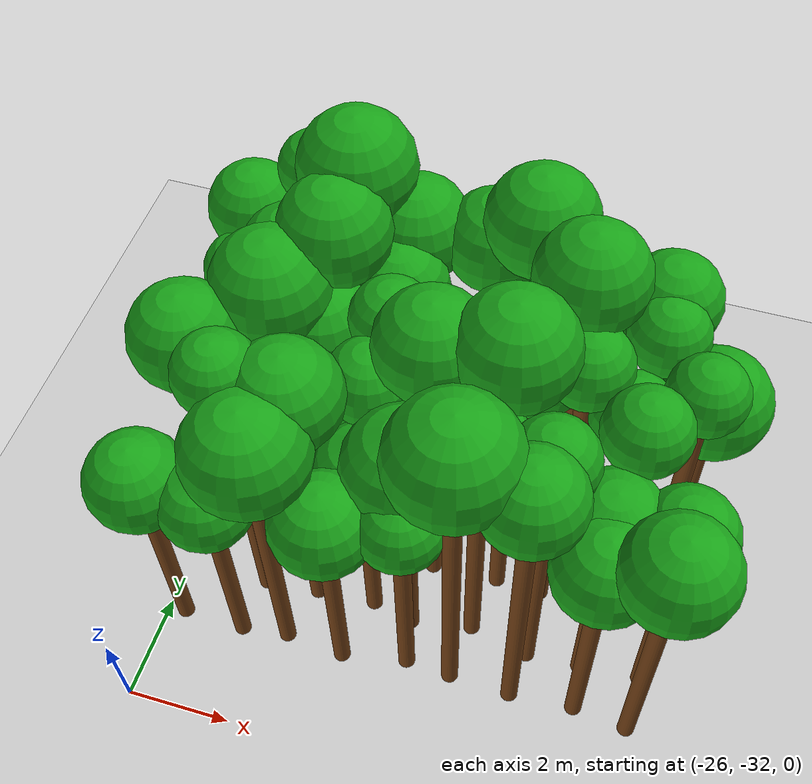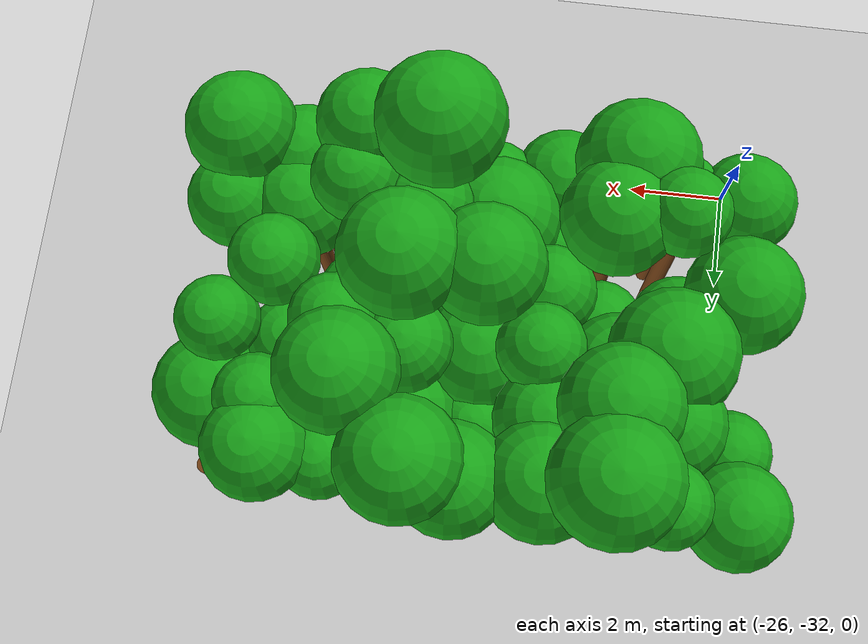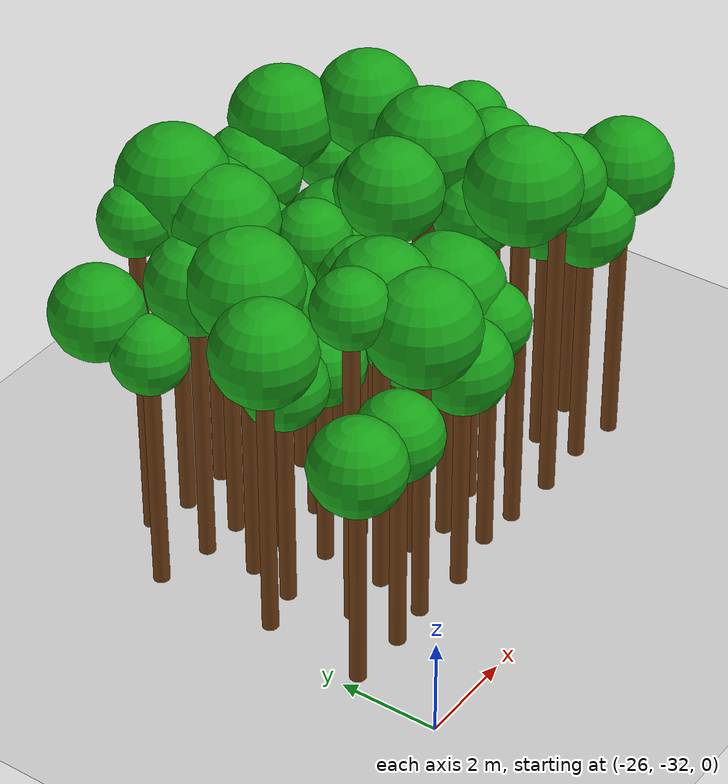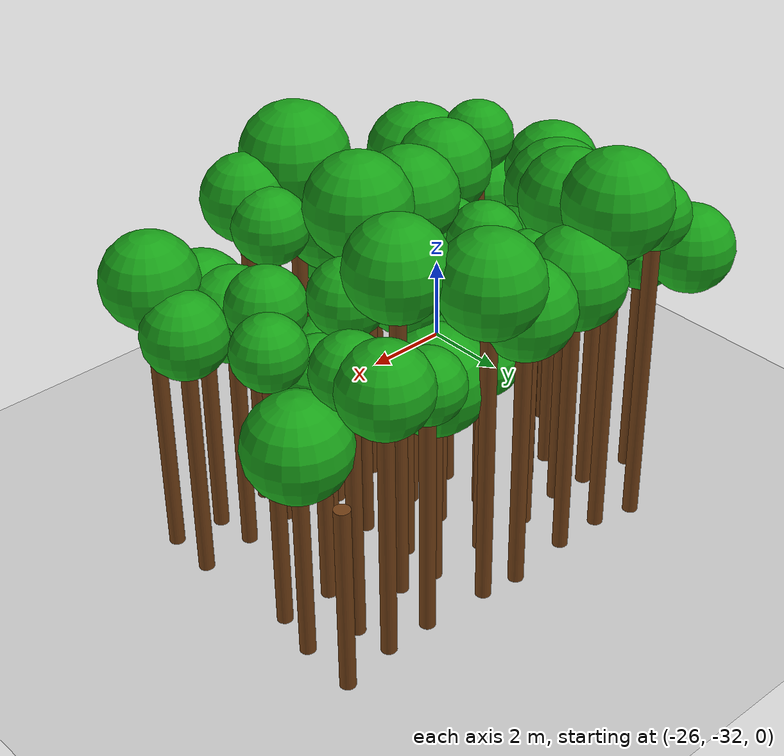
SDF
<sdf version="1.6">
 <world name="forest_world">
  <include><uri>model://sun</uri></include>
  <include><uri>model://ground_plane</uri></include>
  <model name="tree_220_trunk">
   <static>true</static>
   <pose>-25.66 -30.09 2.16 0 0 0</pose>
   <link name="link">
    <collision name="collision">
     <geometry><cylinder><radius>0.16</radius><length>4.32</length></cylinder></geometry>
    </collision>
    <visual name="visual">
     <geometry><cylinder><radius>0.16</radius><length>4.32</length></cylinder></geometry>
     <material><ambient>0.35 0.20 0.05 1</ambient><diffuse>0.45 0.25 0.08 1</diffuse></material>
    </visual>
   </link>
  </model>
  <model name="tree_220_leaf">
   <static>true</static>
   <pose>-25.66 -30.09 4.86 0 0 0</pose>
   <link name="link">
    <collision name="collision"><geometry><sphere><radius>0.91</radius></sphere></geometry></collision>
    <visual name="visual">
     <geometry><sphere><radius>0.91</radius></sphere></geometry>
     <material><ambient>0.05 0.45 0.05 1</ambient><diffuse>0.10 0.65 0.10 1</diffuse></material>
    </visual>
   </link>
  </model>
  <model name="tree_222_trunk">
   <static>true</static>
   <pose>-25.46 -27.97 2.83 0 0 0</pose>
   <link name="link">
    <collision name="collision">
     <geometry><cylinder><radius>0.16</radius><length>5.65</length></cylinder></geometry>
    </collision>
    <visual name="visual">
     <geometry><cylinder><radius>0.16</radius><length>5.65</length></cylinder></geometry>
     <material><ambient>0.35 0.20 0.05 1</ambient><diffuse>0.45 0.25 0.08 1</diffuse></material>
    </visual>
   </link>
  </model>
  <model name="tree_222_leaf">
   <static>true</static>
   <pose>-25.46 -27.97 6.25 0 0 0</pose>
   <link name="link">
    <collision name="collision"><geometry><sphere><radius>0.99</radius></sphere></geometry></collision>
    <visual name="visual">
     <geometry><sphere><radius>0.99</radius></sphere></geometry>
     <material><ambient>0.05 0.45 0.05 1</ambient><diffuse>0.10 0.65 0.10 1</diffuse></material>
    </visual>
   </link>
  </model>
  <model name="tree_224_trunk">
   <static>true</static>
   <pose>-25.56 -25.50 2.40 0 0 0</pose>
   <link name="link">
    <collision name="collision">
     <geometry><cylinder><radius>0.16</radius><length>4.79</length></cylinder></geometry>
    </collision>
    <visual name="visual">
     <geometry><cylinder><radius>0.16</radius><length>4.79</length></cylinder></geometry>
     <material><ambient>0.35 0.20 0.05 1</ambient><diffuse>0.45 0.25 0.08 1</diffuse></material>
    </visual>
   </link>
  </model>
  <model name="tree_224_leaf">
   <static>true</static>
   <pose>-25.56 -25.50 5.23 0 0 0</pose>
   <link name="link">
    <collision name="collision"><geometry><sphere><radius>0.74</radius></sphere></geometry></collision>
    <visual name="visual">
     <geometry><sphere><radius>0.74</radius></sphere></geometry>
     <material><ambient>0.05 0.45 0.05 1</ambient><diffuse>0.10 0.65 0.10 1</diffuse></material>
    </visual>
   </link>
  </model>
  <model name="tree_225_leaf">
   <static>true</static>
   <pose>-25.67 -24.42 5.77 0 0 0</pose>
   <link name="link">
    <collision name="collision"><geometry><sphere><radius>0.90</radius></sphere></geometry></collision>
    <visual name="visual">
     <geometry><sphere><radius>0.90</radius></sphere></geometry>
     <material><ambient>0.05 0.45 0.05 1</ambient><diffuse>0.10 0.65 0.10 1</diffuse></material>
    </visual>
   </link>
  </model>
  <model name="tree_275_trunk">
   <static>true</static>
   <pose>-24.44 -30.11 2.12 0 0 0</pose>
   <link name="link">
    <collision name="collision">
     <geometry><cylinder><radius>0.16</radius><length>4.25</length></cylinder></geometry>
    </collision>
    <visual name="visual">
     <geometry><cylinder><radius>0.16</radius><length>4.25</length></cylinder></geometry>
     <material><ambient>0.35 0.20 0.05 1</ambient><diffuse>0.45 0.25 0.08 1</diffuse></material>
    </visual>
   </link>
  </model>
  <model name="tree_275_leaf">
   <static>true</static>
   <pose>-24.44 -30.11 4.75 0 0 0</pose>
   <link name="link">
    <collision name="collision"><geometry><sphere><radius>0.84</radius></sphere></geometry></collision>
    <visual name="visual">
     <geometry><sphere><radius>0.84</radius></sphere></geometry>
     <material><ambient>0.05 0.45 0.05 1</ambient><diffuse>0.10 0.65 0.10 1</diffuse></material>
    </visual>
   </link>
  </model>
  <model name="tree_276_trunk">
   <static>true</static>
   <pose>-24.34 -29.03 3.27 0 0 0</pose>
   <link name="link">
    <collision name="collision">
     <geometry><cylinder><radius>0.16</radius><length>6.54</length></cylinder></geometry>
    </collision>
    <visual name="visual">
     <geometry><cylinder><radius>0.16</radius><length>6.54</length></cylinder></geometry>
     <material><ambient>0.35 0.20 0.05 1</ambient><diffuse>0.45 0.25 0.08 1</diffuse></material>
    </visual>
   </link>
  </model>
  <model name="tree_276_leaf">
   <static>true</static>
   <pose>-24.34 -29.03 6.98 0 0 0</pose>
   <link name="link">
    <collision name="collision"><geometry><sphere><radius>0.74</radius></sphere></geometry></collision>
    <visual name="visual">
     <geometry><sphere><radius>0.74</radius></sphere></geometry>
     <material><ambient>0.05 0.45 0.05 1</ambient><diffuse>0.10 0.65 0.10 1</diffuse></material>
    </visual>
   </link>
  </model>
  <model name="tree_277_trunk">
   <static>true</static>
   <pose>-24.58 -27.73 2.20 0 0 0</pose>
   <link name="link">
    <collision name="collision">
     <geometry><cylinder><radius>0.16</radius><length>4.41</length></cylinder></geometry>
    </collision>
    <visual name="visual">
     <geometry><cylinder><radius>0.16</radius><length>4.41</length></cylinder></geometry>
     <material><ambient>0.35 0.20 0.05 1</ambient><diffuse>0.45 0.25 0.08 1</diffuse></material>
    </visual>
   </link>
  </model>
  <model name="tree_277_leaf">
   <static>true</static>
   <pose>-24.58 -27.73 4.91 0 0 0</pose>
   <link name="link">
    <collision name="collision"><geometry><sphere><radius>0.83</radius></sphere></geometry></collision>
    <visual name="visual">
     <geometry><sphere><radius>0.83</radius></sphere></geometry>
     <material><ambient>0.05 0.45 0.05 1</ambient><diffuse>0.10 0.65 0.10 1</diffuse></material>
    </visual>
   </link>
  </model>
  <model name="tree_278_trunk">
   <static>true</static>
   <pose>-24.36 -26.78 2.96 0 0 0</pose>
   <link name="link">
    <collision name="collision">
     <geometry><cylinder><radius>0.16</radius><length>5.92</length></cylinder></geometry>
    </collision>
    <visual name="visual">
     <geometry><cylinder><radius>0.16</radius><length>5.92</length></cylinder></geometry>
     <material><ambient>0.35 0.20 0.05 1</ambient><diffuse>0.45 0.25 0.08 1</diffuse></material>
    </visual>
   </link>
  </model>
  <model name="tree_278_leaf">
   <static>true</static>
   <pose>-24.36 -26.78 6.56 0 0 0</pose>
   <link name="link">
    <collision name="collision"><geometry><sphere><radius>1.08</radius></sphere></geometry></collision>
    <visual name="visual">
     <geometry><sphere><radius>1.08</radius></sphere></geometry>
     <material><ambient>0.05 0.45 0.05 1</ambient><diffuse>0.10 0.65 0.10 1</diffuse></material>
    </visual>
   </link>
  </model>
  <model name="tree_279_trunk">
   <static>true</static>
   <pose>-24.41 -25.70 2.80 0 0 0</pose>
   <link name="link">
    <collision name="collision">
     <geometry><cylinder><radius>0.16</radius><length>5.61</length></cylinder></geometry>
    </collision>
    <visual name="visual">
     <geometry><cylinder><radius>0.16</radius><length>5.61</length></cylinder></geometry>
     <material><ambient>0.35 0.20 0.05 1</ambient><diffuse>0.45 0.25 0.08 1</diffuse></material>
    </visual>
   </link>
  </model>
  <model name="tree_279_leaf">
   <static>true</static>
   <pose>-24.41 -25.70 6.19 0 0 0</pose>
   <link name="link">
    <collision name="collision"><geometry><sphere><radius>0.96</radius></sphere></geometry></collision>
    <visual name="visual">
     <geometry><sphere><radius>0.96</radius></sphere></geometry>
     <material><ambient>0.05 0.45 0.05 1</ambient><diffuse>0.10 0.65 0.10 1</diffuse></material>
    </visual>
   </link>
  </model>
  <model name="tree_280_trunk">
   <static>true</static>
   <pose>-24.39 -24.34 3.30 0 0 0</pose>
   <link name="link">
    <collision name="collision">
     <geometry><cylinder><radius>0.16</radius><length>6.61</length></cylinder></geometry>
    </collision>
    <visual name="visual">
     <geometry><cylinder><radius>0.16</radius><length>6.61</length></cylinder></geometry>
     <material><ambient>0.35 0.20 0.05 1</ambient><diffuse>0.45 0.25 0.08 1</diffuse></material>
    </visual>
   </link>
  </model>
  <model name="tree_280_leaf">
   <static>true</static>
   <pose>-24.39 -24.34 7.03 0 0 0</pose>
   <link name="link">
    <collision name="collision"><geometry><sphere><radius>0.70</radius></sphere></geometry></collision>
    <visual name="visual">
     <geometry><sphere><radius>0.70</radius></sphere></geometry>
     <material><ambient>0.05 0.45 0.05 1</ambient><diffuse>0.10 0.65 0.10 1</diffuse></material>
    </visual>
   </link>
  </model>
  <model name="tree_330_trunk">
   <static>true</static>
   <pose>-23.54 -29.99 2.92 0 0 0</pose>
   <link name="link">
    <collision name="collision">
     <geometry><cylinder><radius>0.16</radius><length>5.85</length></cylinder></geometry>
    </collision>
    <visual name="visual">
     <geometry><cylinder><radius>0.16</radius><length>5.85</length></cylinder></geometry>
     <material><ambient>0.35 0.20 0.05 1</ambient><diffuse>0.45 0.25 0.08 1</diffuse></material>
    </visual>
   </link>
  </model>
  <model name="tree_330_leaf">
   <static>true</static>
   <pose>-23.54 -29.99 6.49 0 0 0</pose>
   <link name="link">
    <collision name="collision"><geometry><sphere><radius>1.07</radius></sphere></geometry></collision>
    <visual name="visual">
     <geometry><sphere><radius>1.07</radius></sphere></geometry>
     <material><ambient>0.05 0.45 0.05 1</ambient><diffuse>0.10 0.65 0.10 1</diffuse></material>
    </visual>
   </link>
  </model>
  <model name="tree_331_trunk">
   <static>true</static>
   <pose>-23.28 -28.93 3.05 0 0 0</pose>
   <link name="link">
    <collision name="collision">
     <geometry><cylinder><radius>0.16</radius><length>6.10</length></cylinder></geometry>
    </collision>
    <visual name="visual">
     <geometry><cylinder><radius>0.16</radius><length>6.10</length></cylinder></geometry>
     <material><ambient>0.35 0.20 0.05 1</ambient><diffuse>0.45 0.25 0.08 1</diffuse></material>
    </visual>
   </link>
  </model>
  <model name="tree_331_leaf">
   <static>true</static>
   <pose>-23.28 -28.93 6.69 0 0 0</pose>
   <link name="link">
    <collision name="collision"><geometry><sphere><radius>0.98</radius></sphere></geometry></collision>
    <visual name="visual">
     <geometry><sphere><radius>0.98</radius></sphere></geometry>
     <material><ambient>0.05 0.45 0.05 1</ambient><diffuse>0.10 0.65 0.10 1</diffuse></material>
    </visual>
   </link>
  </model>
  <model name="tree_332_trunk">
   <static>true</static>
   <pose>-23.25 -27.63 2.03 0 0 0</pose>
   <link name="link">
    <collision name="collision">
     <geometry><cylinder><radius>0.16</radius><length>4.05</length></cylinder></geometry>
    </collision>
    <visual name="visual">
     <geometry><cylinder><radius>0.16</radius><length>4.05</length></cylinder></geometry>
     <material><ambient>0.35 0.20 0.05 1</ambient><diffuse>0.45 0.25 0.08 1</diffuse></material>
    </visual>
   </link>
  </model>
  <model name="tree_332_leaf">
   <static>true</static>
   <pose>-23.25 -27.63 4.54 0 0 0</pose>
   <link name="link">
    <collision name="collision"><geometry><sphere><radius>0.81</radius></sphere></geometry></collision>
    <visual name="visual">
     <geometry><sphere><radius>0.81</radius></sphere></geometry>
     <material><ambient>0.05 0.45 0.05 1</ambient><diffuse>0.10 0.65 0.10 1</diffuse></material>
    </visual>
   </link>
  </model>
  <model name="tree_333_trunk">
   <static>true</static>
   <pose>-23.57 -26.60 2.55 0 0 0</pose>
   <link name="link">
    <collision name="collision">
     <geometry><cylinder><radius>0.16</radius><length>5.10</length></cylinder></geometry>
    </collision>
    <visual name="visual">
     <geometry><cylinder><radius>0.16</radius><length>5.10</length></cylinder></geometry>
     <material><ambient>0.35 0.20 0.05 1</ambient><diffuse>0.45 0.25 0.08 1</diffuse></material>
    </visual>
   </link>
  </model>
  <model name="tree_333_leaf">
   <static>true</static>
   <pose>-23.57 -26.60 5.69 0 0 0</pose>
   <link name="link">
    <collision name="collision"><geometry><sphere><radius>0.98</radius></sphere></geometry></collision>
    <visual name="visual">
     <geometry><sphere><radius>0.98</radius></sphere></geometry>
     <material><ambient>0.05 0.45 0.05 1</ambient><diffuse>0.10 0.65 0.10 1</diffuse></material>
    </visual>
   </link>
  </model>
  <model name="tree_334_trunk">
   <static>true</static>
   <pose>-23.56 -25.74 3.25 0 0 0</pose>
   <link name="link">
    <collision name="collision">
     <geometry><cylinder><radius>0.16</radius><length>6.49</length></cylinder></geometry>
    </collision>
    <visual name="visual">
     <geometry><cylinder><radius>0.16</radius><length>6.49</length></cylinder></geometry>
     <material><ambient>0.35 0.20 0.05 1</ambient><diffuse>0.45 0.25 0.08 1</diffuse></material>
    </visual>
   </link>
  </model>
  <model name="tree_334_leaf">
   <static>true</static>
   <pose>-23.56 -25.74 7.10 0 0 0</pose>
   <link name="link">
    <collision name="collision"><geometry><sphere><radius>1.01</radius></sphere></geometry></collision>
    <visual name="visual">
     <geometry><sphere><radius>1.01</radius></sphere></geometry>
     <material><ambient>0.05 0.45 0.05 1</ambient><diffuse>0.10 0.65 0.10 1</diffuse></material>
    </visual>
   </link>
  </model>
  <model name="tree_335_trunk">
   <static>true</static>
   <pose>-23.54 -24.56 3.42 0 0 0</pose>
   <link name="link">
    <collision name="collision">
     <geometry><cylinder><radius>0.16</radius><length>6.84</length></cylinder></geometry>
    </collision>
    <visual name="visual">
     <geometry><cylinder><radius>0.16</radius><length>6.84</length></cylinder></geometry>
     <material><ambient>0.35 0.20 0.05 1</ambient><diffuse>0.45 0.25 0.08 1</diffuse></material>
    </visual>
   </link>
  </model>
  <model name="tree_335_leaf">
   <static>true</static>
   <pose>-23.54 -24.56 7.48 0 0 0</pose>
   <link name="link">
    <collision name="collision"><geometry><sphere><radius>1.07</radius></sphere></geometry></collision>
    <visual name="visual">
     <geometry><sphere><radius>1.07</radius></sphere></geometry>
     <material><ambient>0.05 0.45 0.05 1</ambient><diffuse>0.10 0.65 0.10 1</diffuse></material>
    </visual>
   </link>
  </model>
  <model name="tree_385_trunk">
   <static>true</static>
   <pose>-22.38 -30.08 2.24 0 0 0</pose>
   <link name="link">
    <collision name="collision">
     <geometry><cylinder><radius>0.16</radius><length>4.47</length></cylinder></geometry>
    </collision>
    <visual name="visual">
     <geometry><cylinder><radius>0.16</radius><length>4.47</length></cylinder></geometry>
     <material><ambient>0.35 0.20 0.05 1</ambient><diffuse>0.45 0.25 0.08 1</diffuse></material>
    </visual>
   </link>
  </model>
  <model name="tree_385_leaf">
   <static>true</static>
   <pose>-22.38 -30.08 5.03 0 0 0</pose>
   <link name="link">
    <collision name="collision"><geometry><sphere><radius>0.92</radius></sphere></geometry></collision>
    <visual name="visual">
     <geometry><sphere><radius>0.92</radius></sphere></geometry>
     <material><ambient>0.05 0.45 0.05 1</ambient><diffuse>0.10 0.65 0.10 1</diffuse></material>
    </visual>
   </link>
  </model>
  <model name="tree_386_trunk">
   <static>true</static>
   <pose>-22.13 -28.84 2.15 0 0 0</pose>
   <link name="link">
    <collision name="collision">
     <geometry><cylinder><radius>0.16</radius><length>4.31</length></cylinder></geometry>
    </collision>
    <visual name="visual">
     <geometry><cylinder><radius>0.16</radius><length>4.31</length></cylinder></geometry>
     <material><ambient>0.35 0.20 0.05 1</ambient><diffuse>0.45 0.25 0.08 1</diffuse></material>
    </visual>
   </link>
  </model>
  <model name="tree_386_leaf">
   <static>true</static>
   <pose>-22.13 -28.84 4.84 0 0 0</pose>
   <link name="link">
    <collision name="collision"><geometry><sphere><radius>0.89</radius></sphere></geometry></collision>
    <visual name="visual">
     <geometry><sphere><radius>0.89</radius></sphere></geometry>
     <material><ambient>0.05 0.45 0.05 1</ambient><diffuse>0.10 0.65 0.10 1</diffuse></material>
    </visual>
   </link>
  </model>
  <model name="tree_387_trunk">
   <static>true</static>
   <pose>-22.32 -27.77 2.74 0 0 0</pose>
   <link name="link">
    <collision name="collision">
     <geometry><cylinder><radius>0.16</radius><length>5.47</length></cylinder></geometry>
    </collision>
    <visual name="visual">
     <geometry><cylinder><radius>0.16</radius><length>5.47</length></cylinder></geometry>
     <material><ambient>0.35 0.20 0.05 1</ambient><diffuse>0.45 0.25 0.08 1</diffuse></material>
    </visual>
   </link>
  </model>
  <model name="tree_387_leaf">
   <static>true</static>
   <pose>-22.32 -27.77 5.94 0 0 0</pose>
   <link name="link">
    <collision name="collision"><geometry><sphere><radius>0.78</radius></sphere></geometry></collision>
    <visual name="visual">
     <geometry><sphere><radius>0.78</radius></sphere></geometry>
     <material><ambient>0.05 0.45 0.05 1</ambient><diffuse>0.10 0.65 0.10 1</diffuse></material>
    </visual>
   </link>
  </model>
  <model name="tree_388_trunk">
   <static>true</static>
   <pose>-22.26 -26.69 2.95 0 0 0</pose>
   <link name="link">
    <collision name="collision">
     <geometry><cylinder><radius>0.16</radius><length>5.89</length></cylinder></geometry>
    </collision>
    <visual name="visual">
     <geometry><cylinder><radius>0.16</radius><length>5.89</length></cylinder></geometry>
     <material><ambient>0.35 0.20 0.05 1</ambient><diffuse>0.45 0.25 0.08 1</diffuse></material>
    </visual>
   </link>
  </model>
  <model name="tree_388_leaf">
   <static>true</static>
   <pose>-22.26 -26.69 6.34 0 0 0</pose>
   <link name="link">
    <collision name="collision"><geometry><sphere><radius>0.75</radius></sphere></geometry></collision>
    <visual name="visual">
     <geometry><sphere><radius>0.75</radius></sphere></geometry>
     <material><ambient>0.05 0.45 0.05 1</ambient><diffuse>0.10 0.65 0.10 1</diffuse></material>
    </visual>
   </link>
  </model>
  <model name="tree_389_trunk">
   <static>true</static>
   <pose>-22.48 -25.61 2.69 0 0 0</pose>
   <link name="link">
    <collision name="collision">
     <geometry><cylinder><radius>0.16</radius><length>5.37</length></cylinder></geometry>
    </collision>
    <visual name="visual">
     <geometry><cylinder><radius>0.16</radius><length>5.37</length></cylinder></geometry>
     <material><ambient>0.35 0.20 0.05 1</ambient><diffuse>0.45 0.25 0.08 1</diffuse></material>
    </visual>
   </link>
  </model>
  <model name="tree_389_leaf">
   <static>true</static>
   <pose>-22.48 -25.61 5.91 0 0 0</pose>
   <link name="link">
    <collision name="collision"><geometry><sphere><radius>0.90</radius></sphere></geometry></collision>
    <visual name="visual">
     <geometry><sphere><radius>0.90</radius></sphere></geometry>
     <material><ambient>0.05 0.45 0.05 1</ambient><diffuse>0.10 0.65 0.10 1</diffuse></material>
    </visual>
   </link>
  </model>
  <model name="tree_390_trunk">
   <static>true</static>
   <pose>-22.48 -24.56 2.86 0 0 0</pose>
   <link name="link">
    <collision name="collision">
     <geometry><cylinder><radius>0.16</radius><length>5.72</length></cylinder></geometry>
    </collision>
    <visual name="visual">
     <geometry><cylinder><radius>0.16</radius><length>5.72</length></cylinder></geometry>
     <material><ambient>0.35 0.20 0.05 1</ambient><diffuse>0.45 0.25 0.08 1</diffuse></material>
    </visual>
   </link>
  </model>
  <model name="tree_390_leaf">
   <static>true</static>
   <pose>-22.48 -24.56 6.32 0 0 0</pose>
   <link name="link">
    <collision name="collision"><geometry><sphere><radius>1.00</radius></sphere></geometry></collision>
    <visual name="visual">
     <geometry><sphere><radius>1.00</radius></sphere></geometry>
     <material><ambient>0.05 0.45 0.05 1</ambient><diffuse>0.10 0.65 0.10 1</diffuse></material>
    </visual>
   </link>
  </model>
  <model name="tree_440_trunk">
   <static>true</static>
   <pose>-21.14 -29.84 2.35 0 0 0</pose>
   <link name="link">
    <collision name="collision">
     <geometry><cylinder><radius>0.16</radius><length>4.70</length></cylinder></geometry>
    </collision>
    <visual name="visual">
     <geometry><cylinder><radius>0.16</radius><length>4.70</length></cylinder></geometry>
     <material><ambient>0.35 0.20 0.05 1</ambient><diffuse>0.45 0.25 0.08 1</diffuse></material>
    </visual>
   </link>
  </model>
  <model name="tree_440_leaf">
   <static>true</static>
   <pose>-21.14 -29.84 5.16 0 0 0</pose>
   <link name="link">
    <collision name="collision"><geometry><sphere><radius>0.77</radius></sphere></geometry></collision>
    <visual name="visual">
     <geometry><sphere><radius>0.77</radius></sphere></geometry>
     <material><ambient>0.05 0.45 0.05 1</ambient><diffuse>0.10 0.65 0.10 1</diffuse></material>
    </visual>
   </link>
  </model>
  <model name="tree_441_trunk">
   <static>true</static>
   <pose>-21.31 -29.03 2.49 0 0 0</pose>
   <link name="link">
    <collision name="collision">
     <geometry><cylinder><radius>0.16</radius><length>4.98</length></cylinder></geometry>
    </collision>
    <visual name="visual">
     <geometry><cylinder><radius>0.16</radius><length>4.98</length></cylinder></geometry>
     <material><ambient>0.35 0.20 0.05 1</ambient><diffuse>0.45 0.25 0.08 1</diffuse></material>
    </visual>
   </link>
  </model>
  <model name="tree_441_leaf">
   <static>true</static>
   <pose>-21.31 -29.03 5.63 0 0 0</pose>
   <link name="link">
    <collision name="collision"><geometry><sphere><radius>1.08</radius></sphere></geometry></collision>
    <visual name="visual">
     <geometry><sphere><radius>1.08</radius></sphere></geometry>
     <material><ambient>0.05 0.45 0.05 1</ambient><diffuse>0.10 0.65 0.10 1</diffuse></material>
    </visual>
   </link>
  </model>
  <model name="tree_442_trunk">
   <static>true</static>
   <pose>-21.24 -27.72 3.33 0 0 0</pose>
   <link name="link">
    <collision name="collision">
     <geometry><cylinder><radius>0.16</radius><length>6.66</length></cylinder></geometry>
    </collision>
    <visual name="visual">
     <geometry><cylinder><radius>0.16</radius><length>6.66</length></cylinder></geometry>
     <material><ambient>0.35 0.20 0.05 1</ambient><diffuse>0.45 0.25 0.08 1</diffuse></material>
    </visual>
   </link>
  </model>
  <model name="tree_442_leaf">
   <static>true</static>
   <pose>-21.24 -27.72 7.24 0 0 0</pose>
   <link name="link">
    <collision name="collision"><geometry><sphere><radius>0.98</radius></sphere></geometry></collision>
    <visual name="visual">
     <geometry><sphere><radius>0.98</radius></sphere></geometry>
     <material><ambient>0.05 0.45 0.05 1</ambient><diffuse>0.10 0.65 0.10 1</diffuse></material>
    </visual>
   </link>
  </model>
  <model name="tree_443_trunk">
   <static>true</static>
   <pose>-21.24 -26.85 2.18 0 0 0</pose>
   <link name="link">
    <collision name="collision">
     <geometry><cylinder><radius>0.16</radius><length>4.36</length></cylinder></geometry>
    </collision>
    <visual name="visual">
     <geometry><cylinder><radius>0.16</radius><length>4.36</length></cylinder></geometry>
     <material><ambient>0.35 0.20 0.05 1</ambient><diffuse>0.45 0.25 0.08 1</diffuse></material>
    </visual>
   </link>
  </model>
  <model name="tree_443_leaf">
   <static>true</static>
   <pose>-21.24 -26.85 4.98 0 0 0</pose>
   <link name="link">
    <collision name="collision"><geometry><sphere><radius>1.03</radius></sphere></geometry></collision>
    <visual name="visual">
     <geometry><sphere><radius>1.03</radius></sphere></geometry>
     <material><ambient>0.05 0.45 0.05 1</ambient><diffuse>0.10 0.65 0.10 1</diffuse></material>
    </visual>
   </link>
  </model>
  <model name="tree_444_trunk">
   <static>true</static>
   <pose>-21.24 -25.62 2.06 0 0 0</pose>
   <link name="link">
    <collision name="collision">
     <geometry><cylinder><radius>0.16</radius><length>4.12</length></cylinder></geometry>
    </collision>
    <visual name="visual">
     <geometry><cylinder><radius>0.16</radius><length>4.12</length></cylinder></geometry>
     <material><ambient>0.35 0.20 0.05 1</ambient><diffuse>0.45 0.25 0.08 1</diffuse></material>
    </visual>
   </link>
  </model>
  <model name="tree_444_leaf">
   <static>true</static>
   <pose>-21.24 -25.62 4.54 0 0 0</pose>
   <link name="link">
    <collision name="collision"><geometry><sphere><radius>0.71</radius></sphere></geometry></collision>
    <visual name="visual">
     <geometry><sphere><radius>0.71</radius></sphere></geometry>
     <material><ambient>0.05 0.45 0.05 1</ambient><diffuse>0.10 0.65 0.10 1</diffuse></material>
    </visual>
   </link>
  </model>
  <model name="tree_445_trunk">
   <static>true</static>
   <pose>-21.06 -24.43 2.87 0 0 0</pose>
   <link name="link">
    <collision name="collision">
     <geometry><cylinder><radius>0.16</radius><length>5.74</length></cylinder></geometry>
    </collision>
    <visual name="visual">
     <geometry><cylinder><radius>0.16</radius><length>5.74</length></cylinder></geometry>
     <material><ambient>0.35 0.20 0.05 1</ambient><diffuse>0.45 0.25 0.08 1</diffuse></material>
    </visual>
   </link>
  </model>
  <model name="tree_445_leaf">
   <static>true</static>
   <pose>-21.06 -24.43 6.31 0 0 0</pose>
   <link name="link">
    <collision name="collision"><geometry><sphere><radius>0.96</radius></sphere></geometry></collision>
    <visual name="visual">
     <geometry><sphere><radius>0.96</radius></sphere></geometry>
     <material><ambient>0.05 0.45 0.05 1</ambient><diffuse>0.10 0.65 0.10 1</diffuse></material>
    </visual>
   </link>
  </model>
  <model name="tree_495_trunk">
   <static>true</static>
   <pose>-20.26 -29.89 3.48 0 0 0</pose>
   <link name="link">
    <collision name="collision">
     <geometry><cylinder><radius>0.16</radius><length>6.96</length></cylinder></geometry>
    </collision>
    <visual name="visual">
     <geometry><cylinder><radius>0.16</radius><length>6.96</length></cylinder></geometry>
     <material><ambient>0.35 0.20 0.05 1</ambient><diffuse>0.45 0.25 0.08 1</diffuse></material>
    </visual>
   </link>
  </model>
  <model name="tree_495_leaf">
   <static>true</static>
   <pose>-20.26 -29.89 7.61 0 0 0</pose>
   <link name="link">
    <collision name="collision"><geometry><sphere><radius>1.09</radius></sphere></geometry></collision>
    <visual name="visual">
     <geometry><sphere><radius>1.09</radius></sphere></geometry>
     <material><ambient>0.05 0.45 0.05 1</ambient><diffuse>0.10 0.65 0.10 1</diffuse></material>
    </visual>
   </link>
  </model>
  <model name="tree_496_trunk">
   <static>true</static>
   <pose>-20.13 -28.80 3.02 0 0 0</pose>
   <link name="link">
    <collision name="collision">
     <geometry><cylinder><radius>0.16</radius><length>6.05</length></cylinder></geometry>
    </collision>
    <visual name="visual">
     <geometry><cylinder><radius>0.16</radius><length>6.05</length></cylinder></geometry>
     <material><ambient>0.35 0.20 0.05 1</ambient><diffuse>0.45 0.25 0.08 1</diffuse></material>
    </visual>
   </link>
  </model>
  <model name="tree_496_leaf">
   <static>true</static>
   <pose>-20.13 -28.80 6.53 0 0 0</pose>
   <link name="link">
    <collision name="collision"><geometry><sphere><radius>0.80</radius></sphere></geometry></collision>
    <visual name="visual">
     <geometry><sphere><radius>0.80</radius></sphere></geometry>
     <material><ambient>0.05 0.45 0.05 1</ambient><diffuse>0.10 0.65 0.10 1</diffuse></material>
    </visual>
   </link>
  </model>
  <model name="tree_497_trunk">
   <static>true</static>
   <pose>-19.93 -27.65 3.46 0 0 0</pose>
   <link name="link">
    <collision name="collision">
     <geometry><cylinder><radius>0.16</radius><length>6.92</length></cylinder></geometry>
    </collision>
    <visual name="visual">
     <geometry><cylinder><radius>0.16</radius><length>6.92</length></cylinder></geometry>
     <material><ambient>0.35 0.20 0.05 1</ambient><diffuse>0.45 0.25 0.08 1</diffuse></material>
    </visual>
   </link>
  </model>
  <model name="tree_497_leaf">
   <static>true</static>
   <pose>-19.93 -27.65 7.54 0 0 0</pose>
   <link name="link">
    <collision name="collision"><geometry><sphere><radius>1.04</radius></sphere></geometry></collision>
    <visual name="visual">
     <geometry><sphere><radius>1.04</radius></sphere></geometry>
     <material><ambient>0.05 0.45 0.05 1</ambient><diffuse>0.10 0.65 0.10 1</diffuse></material>
    </visual>
   </link>
  </model>
  <model name="tree_498_trunk">
   <static>true</static>
   <pose>-20.04 -26.53 2.83 0 0 0</pose>
   <link name="link">
    <collision name="collision">
     <geometry><cylinder><radius>0.16</radius><length>5.67</length></cylinder></geometry>
    </collision>
    <visual name="visual">
     <geometry><cylinder><radius>0.16</radius><length>5.67</length></cylinder></geometry>
     <material><ambient>0.35 0.20 0.05 1</ambient><diffuse>0.45 0.25 0.08 1</diffuse></material>
    </visual>
   </link>
  </model>
  <model name="tree_498_leaf">
   <static>true</static>
   <pose>-20.04 -26.53 6.15 0 0 0</pose>
   <link name="link">
    <collision name="collision"><geometry><sphere><radius>0.80</radius></sphere></geometry></collision>
    <visual name="visual">
     <geometry><sphere><radius>0.80</radius></sphere></geometry>
     <material><ambient>0.05 0.45 0.05 1</ambient><diffuse>0.10 0.65 0.10 1</diffuse></material>
    </visual>
   </link>
  </model>
  <model name="tree_499_trunk">
   <static>true</static>
   <pose>-19.93 -25.60 2.04 0 0 0</pose>
   <link name="link">
    <collision name="collision">
     <geometry><cylinder><radius>0.16</radius><length>4.08</length></cylinder></geometry>
    </collision>
    <visual name="visual">
     <geometry><cylinder><radius>0.16</radius><length>4.08</length></cylinder></geometry>
     <material><ambient>0.35 0.20 0.05 1</ambient><diffuse>0.45 0.25 0.08 1</diffuse></material>
    </visual>
   </link>
  </model>
  <model name="tree_499_leaf">
   <static>true</static>
   <pose>-19.93 -25.60 4.73 0 0 0</pose>
   <link name="link">
    <collision name="collision"><geometry><sphere><radius>1.08</radius></sphere></geometry></collision>
    <visual name="visual">
     <geometry><sphere><radius>1.08</radius></sphere></geometry>
     <material><ambient>0.05 0.45 0.05 1</ambient><diffuse>0.10 0.65 0.10 1</diffuse></material>
    </visual>
   </link>
  </model>
  <model name="tree_500_trunk">
   <static>true</static>
   <pose>-20.26 -24.54 3.25 0 0 0</pose>
   <link name="link">
    <collision name="collision">
     <geometry><cylinder><radius>0.16</radius><length>6.51</length></cylinder></geometry>
    </collision>
    <visual name="visual">
     <geometry><cylinder><radius>0.16</radius><length>6.51</length></cylinder></geometry>
     <material><ambient>0.35 0.20 0.05 1</ambient><diffuse>0.45 0.25 0.08 1</diffuse></material>
    </visual>
   </link>
  </model>
  <model name="tree_500_leaf">
   <static>true</static>
   <pose>-20.26 -24.54 7.12 0 0 0</pose>
   <link name="link">
    <collision name="collision"><geometry><sphere><radius>1.02</radius></sphere></geometry></collision>
    <visual name="visual">
     <geometry><sphere><radius>1.02</radius></sphere></geometry>
     <material><ambient>0.05 0.45 0.05 1</ambient><diffuse>0.10 0.65 0.10 1</diffuse></material>
    </visual>
   </link>
  </model>
  <model name="tree_550_trunk">
   <static>true</static>
   <pose>-19.07 -29.93 3.30 0 0 0</pose>
   <link name="link">
    <collision name="collision">
     <geometry><cylinder><radius>0.16</radius><length>6.59</length></cylinder></geometry>
    </collision>
    <visual name="visual">
     <geometry><cylinder><radius>0.16</radius><length>6.59</length></cylinder></geometry>
     <material><ambient>0.35 0.20 0.05 1</ambient><diffuse>0.45 0.25 0.08 1</diffuse></material>
    </visual>
   </link>
  </model>
  <model name="tree_550_leaf">
   <static>true</static>
   <pose>-19.07 -29.93 7.12 0 0 0</pose>
   <link name="link">
    <collision name="collision"><geometry><sphere><radius>0.87</radius></sphere></geometry></collision>
    <visual name="visual">
     <geometry><sphere><radius>0.87</radius></sphere></geometry>
     <material><ambient>0.05 0.45 0.05 1</ambient><diffuse>0.10 0.65 0.10 1</diffuse></material>
    </visual>
   </link>
  </model>
  <model name="tree_551_trunk">
   <static>true</static>
   <pose>-18.96 -29.05 3.23 0 0 0</pose>
   <link name="link">
    <collision name="collision">
     <geometry><cylinder><radius>0.16</radius><length>6.45</length></cylinder></geometry>
    </collision>
    <visual name="visual">
     <geometry><cylinder><radius>0.16</radius><length>6.45</length></cylinder></geometry>
     <material><ambient>0.35 0.20 0.05 1</ambient><diffuse>0.45 0.25 0.08 1</diffuse></material>
    </visual>
   </link>
  </model>
  <model name="tree_551_leaf">
   <static>true</static>
   <pose>-18.96 -29.05 6.90 0 0 0</pose>
   <link name="link">
    <collision name="collision"><geometry><sphere><radius>0.75</radius></sphere></geometry></collision>
    <visual name="visual">
     <geometry><sphere><radius>0.75</radius></sphere></geometry>
     <material><ambient>0.05 0.45 0.05 1</ambient><diffuse>0.10 0.65 0.10 1</diffuse></material>
    </visual>
   </link>
  </model>
  <model name="tree_552_trunk">
   <static>true</static>
   <pose>-19.03 -27.68 2.12 0 0 0</pose>
   <link name="link">
    <collision name="collision">
     <geometry><cylinder><radius>0.16</radius><length>4.24</length></cylinder></geometry>
    </collision>
    <visual name="visual">
     <geometry><cylinder><radius>0.16</radius><length>4.24</length></cylinder></geometry>
     <material><ambient>0.35 0.20 0.05 1</ambient><diffuse>0.45 0.25 0.08 1</diffuse></material>
    </visual>
   </link>
  </model>
  <model name="tree_552_leaf">
   <static>true</static>
   <pose>-19.03 -27.68 4.70 0 0 0</pose>
   <link name="link">
    <collision name="collision"><geometry><sphere><radius>0.76</radius></sphere></geometry></collision>
    <visual name="visual">
     <geometry><sphere><radius>0.76</radius></sphere></geometry>
     <material><ambient>0.05 0.45 0.05 1</ambient><diffuse>0.10 0.65 0.10 1</diffuse></material>
    </visual>
   </link>
  </model>
  <model name="tree_553_trunk">
   <static>true</static>
   <pose>-18.87 -26.77 2.98 0 0 0</pose>
   <link name="link">
    <collision name="collision">
     <geometry><cylinder><radius>0.16</radius><length>5.95</length></cylinder></geometry>
    </collision>
    <visual name="visual">
     <geometry><cylinder><radius>0.16</radius><length>5.95</length></cylinder></geometry>
     <material><ambient>0.35 0.20 0.05 1</ambient><diffuse>0.45 0.25 0.08 1</diffuse></material>
    </visual>
   </link>
  </model>
  <model name="tree_553_leaf">
   <static>true</static>
   <pose>-18.87 -26.77 6.41 0 0 0</pose>
   <link name="link">
    <collision name="collision"><geometry><sphere><radius>0.76</radius></sphere></geometry></collision>
    <visual name="visual">
     <geometry><sphere><radius>0.76</radius></sphere></geometry>
     <material><ambient>0.05 0.45 0.05 1</ambient><diffuse>0.10 0.65 0.10 1</diffuse></material>
    </visual>
   </link>
  </model>
  <model name="tree_554_trunk">
   <static>true</static>
   <pose>-19.16 -25.74 3.38 0 0 0</pose>
   <link name="link">
    <collision name="collision">
     <geometry><cylinder><radius>0.16</radius><length>6.75</length></cylinder></geometry>
    </collision>
    <visual name="visual">
     <geometry><cylinder><radius>0.16</radius><length>6.75</length></cylinder></geometry>
     <material><ambient>0.35 0.20 0.05 1</ambient><diffuse>0.45 0.25 0.08 1</diffuse></material>
    </visual>
   </link>
  </model>
  <model name="tree_554_leaf">
   <static>true</static>
   <pose>-19.16 -25.74 7.35 0 0 0</pose>
   <link name="link">
    <collision name="collision"><geometry><sphere><radius>1.00</radius></sphere></geometry></collision>
    <visual name="visual">
     <geometry><sphere><radius>1.00</radius></sphere></geometry>
     <material><ambient>0.05 0.45 0.05 1</ambient><diffuse>0.10 0.65 0.10 1</diffuse></material>
    </visual>
   </link>
  </model>
  <model name="tree_555_trunk">
   <static>true</static>
   <pose>-18.85 -24.63 2.58 0 0 0</pose>
   <link name="link">
    <collision name="collision">
     <geometry><cylinder><radius>0.16</radius><length>5.16</length></cylinder></geometry>
    </collision>
    <visual name="visual">
     <geometry><cylinder><radius>0.16</radius><length>5.16</length></cylinder></geometry>
     <material><ambient>0.35 0.20 0.05 1</ambient><diffuse>0.45 0.25 0.08 1</diffuse></material>
    </visual>
   </link>
  </model>
  <model name="tree_555_leaf">
   <static>true</static>
   <pose>-18.85 -24.63 5.59 0 0 0</pose>
   <link name="link">
    <collision name="collision"><geometry><sphere><radius>0.72</radius></sphere></geometry></collision>
    <visual name="visual">
     <geometry><sphere><radius>0.72</radius></sphere></geometry>
     <material><ambient>0.05 0.45 0.05 1</ambient><diffuse>0.10 0.65 0.10 1</diffuse></material>
    </visual>
   </link>
  </model>
  <model name="tree_605_trunk">
   <static>true</static>
   <pose>-17.84 -29.84 2.49 0 0 0</pose>
   <link name="link">
    <collision name="collision">
     <geometry><cylinder><radius>0.16</radius><length>4.98</length></cylinder></geometry>
    </collision>
    <visual name="visual">
     <geometry><cylinder><radius>0.16</radius><length>4.98</length></cylinder></geometry>
     <material><ambient>0.35 0.20 0.05 1</ambient><diffuse>0.45 0.25 0.08 1</diffuse></material>
    </visual>
   </link>
  </model>
  <model name="tree_605_leaf">
   <static>true</static>
   <pose>-17.84 -29.84 5.52 0 0 0</pose>
   <link name="link">
    <collision name="collision"><geometry><sphere><radius>0.90</radius></sphere></geometry></collision>
    <visual name="visual">
     <geometry><sphere><radius>0.90</radius></sphere></geometry>
     <material><ambient>0.05 0.45 0.05 1</ambient><diffuse>0.10 0.65 0.10 1</diffuse></material>
    </visual>
   </link>
  </model>
  <model name="tree_606_trunk">
   <static>true</static>
   <pose>-17.92 -28.99 2.44 0 0 0</pose>
   <link name="link">
    <collision name="collision">
     <geometry><cylinder><radius>0.16</radius><length>4.88</length></cylinder></geometry>
    </collision>
    <visual name="visual">
     <geometry><cylinder><radius>0.16</radius><length>4.88</length></cylinder></geometry>
     <material><ambient>0.35 0.20 0.05 1</ambient><diffuse>0.45 0.25 0.08 1</diffuse></material>
    </visual>
   </link>
  </model>
  <model name="tree_606_leaf">
   <static>true</static>
   <pose>-17.92 -28.99 5.45 0 0 0</pose>
   <link name="link">
    <collision name="collision"><geometry><sphere><radius>0.94</radius></sphere></geometry></collision>
    <visual name="visual">
     <geometry><sphere><radius>0.94</radius></sphere></geometry>
     <material><ambient>0.05 0.45 0.05 1</ambient><diffuse>0.10 0.65 0.10 1</diffuse></material>
    </visual>
   </link>
  </model>
  <model name="tree_607_trunk">
   <static>true</static>
   <pose>-17.73 -27.68 2.91 0 0 0</pose>
   <link name="link">
    <collision name="collision">
     <geometry><cylinder><radius>0.16</radius><length>5.83</length></cylinder></geometry>
    </collision>
    <visual name="visual">
     <geometry><cylinder><radius>0.16</radius><length>5.83</length></cylinder></geometry>
     <material><ambient>0.35 0.20 0.05 1</ambient><diffuse>0.45 0.25 0.08 1</diffuse></material>
    </visual>
   </link>
  </model>
  <model name="tree_607_leaf">
   <static>true</static>
   <pose>-17.73 -27.68 6.29 0 0 0</pose>
   <link name="link">
    <collision name="collision"><geometry><sphere><radius>0.77</radius></sphere></geometry></collision>
    <visual name="visual">
     <geometry><sphere><radius>0.77</radius></sphere></geometry>
     <material><ambient>0.05 0.45 0.05 1</ambient><diffuse>0.10 0.65 0.10 1</diffuse></material>
    </visual>
   </link>
  </model>
  <model name="tree_608_trunk">
   <static>true</static>
   <pose>-18.04 -26.61 2.36 0 0 0</pose>
   <link name="link">
    <collision name="collision">
     <geometry><cylinder><radius>0.16</radius><length>4.73</length></cylinder></geometry>
    </collision>
    <visual name="visual">
     <geometry><cylinder><radius>0.16</radius><length>4.73</length></cylinder></geometry>
     <material><ambient>0.35 0.20 0.05 1</ambient><diffuse>0.45 0.25 0.08 1</diffuse></material>
    </visual>
   </link>
  </model>
  <model name="tree_608_leaf">
   <static>true</static>
   <pose>-18.04 -26.61 5.19 0 0 0</pose>
   <link name="link">
    <collision name="collision"><geometry><sphere><radius>0.77</radius></sphere></geometry></collision>
    <visual name="visual">
     <geometry><sphere><radius>0.77</radius></sphere></geometry>
     <material><ambient>0.05 0.45 0.05 1</ambient><diffuse>0.10 0.65 0.10 1</diffuse></material>
    </visual>
   </link>
  </model>
  <model name="tree_609_trunk">
   <static>true</static>
   <pose>-17.76 -25.42 2.77 0 0 0</pose>
   <link name="link">
    <collision name="collision">
     <geometry><cylinder><radius>0.16</radius><length>5.55</length></cylinder></geometry>
    </collision>
    <visual name="visual">
     <geometry><cylinder><radius>0.16</radius><length>5.55</length></cylinder></geometry>
     <material><ambient>0.35 0.20 0.05 1</ambient><diffuse>0.45 0.25 0.08 1</diffuse></material>
    </visual>
   </link>
  </model>
  <model name="tree_609_leaf">
   <static>true</static>
   <pose>-17.76 -25.42 5.99 0 0 0</pose>
   <link name="link">
    <collision name="collision"><geometry><sphere><radius>0.74</radius></sphere></geometry></collision>
    <visual name="visual">
     <geometry><sphere><radius>0.74</radius></sphere></geometry>
     <material><ambient>0.05 0.45 0.05 1</ambient><diffuse>0.10 0.65 0.10 1</diffuse></material>
    </visual>
   </link>
  </model>
  <model name="tree_610_trunk">
   <static>true</static>
   <pose>-17.85 -24.62 2.72 0 0 0</pose>
   <link name="link">
    <collision name="collision">
     <geometry><cylinder><radius>0.16</radius><length>5.44</length></cylinder></geometry>
    </collision>
    <visual name="visual">
     <geometry><cylinder><radius>0.16</radius><length>5.44</length></cylinder></geometry>
     <material><ambient>0.35 0.20 0.05 1</ambient><diffuse>0.45 0.25 0.08 1</diffuse></material>
    </visual>
   </link>
  </model>
  <model name="tree_610_leaf">
   <static>true</static>
   <pose>-17.85 -24.62 5.98 0 0 0</pose>
   <link name="link">
    <collision name="collision"><geometry><sphere><radius>0.90</radius></sphere></geometry></collision>
    <visual name="visual">
     <geometry><sphere><radius>0.90</radius></sphere></geometry>
     <material><ambient>0.05 0.45 0.05 1</ambient><diffuse>0.10 0.65 0.10 1</diffuse></material>
    </visual>
   </link>
  </model>
  <model name="tree_660_trunk">
   <static>true</static>
   <pose>-16.80 -29.96 2.82 0 0 0</pose>
   <link name="link">
    <collision name="collision">
     <geometry><cylinder><radius>0.16</radius><length>5.63</length></cylinder></geometry>
    </collision>
    <visual name="visual">
     <geometry><cylinder><radius>0.16</radius><length>5.63</length></cylinder></geometry>
     <material><ambient>0.35 0.20 0.05 1</ambient><diffuse>0.45 0.25 0.08 1</diffuse></material>
    </visual>
   </link>
  </model>
  <model name="tree_660_leaf">
   <static>true</static>
   <pose>-16.80 -29.96 6.21 0 0 0</pose>
   <link name="link">
    <collision name="collision"><geometry><sphere><radius>0.96</radius></sphere></geometry></collision>
    <visual name="visual">
     <geometry><sphere><radius>0.96</radius></sphere></geometry>
     <material><ambient>0.05 0.45 0.05 1</ambient><diffuse>0.10 0.65 0.10 1</diffuse></material>
    </visual>
   </link>
  </model>
  <model name="tree_661_trunk">
   <static>true</static>
   <pose>-16.76 -28.90 2.51 0 0 0</pose>
   <link name="link">
    <collision name="collision">
     <geometry><cylinder><radius>0.16</radius><length>5.02</length></cylinder></geometry>
    </collision>
    <visual name="visual">
     <geometry><cylinder><radius>0.16</radius><length>5.02</length></cylinder></geometry>
     <material><ambient>0.35 0.20 0.05 1</ambient><diffuse>0.45 0.25 0.08 1</diffuse></material>
    </visual>
   </link>
  </model>
  <model name="tree_661_leaf">
   <static>true</static>
   <pose>-16.76 -28.90 5.53 0 0 0</pose>
   <link name="link">
    <collision name="collision"><geometry><sphere><radius>0.85</radius></sphere></geometry></collision>
    <visual name="visual">
     <geometry><sphere><radius>0.85</radius></sphere></geometry>
     <material><ambient>0.05 0.45 0.05 1</ambient><diffuse>0.10 0.65 0.10 1</diffuse></material>
    </visual>
   </link>
  </model>
  <model name="tree_663_trunk">
   <static>true</static>
   <pose>-16.94 -26.62 2.87 0 0 0</pose>
   <link name="link">
    <collision name="collision">
     <geometry><cylinder><radius>0.16</radius><length>5.74</length></cylinder></geometry>
    </collision>
    <visual name="visual">
     <geometry><cylinder><radius>0.16</radius><length>5.74</length></cylinder></geometry>
     <material><ambient>0.35 0.20 0.05 1</ambient><diffuse>0.45 0.25 0.08 1</diffuse></material>
    </visual>
   </link>
  </model>
  <model name="tree_663_leaf">
   <static>true</static>
   <pose>-16.94 -26.62 6.17 0 0 0</pose>
   <link name="link">
    <collision name="collision"><geometry><sphere><radius>0.71</radius></sphere></geometry></collision>
    <visual name="visual">
     <geometry><sphere><radius>0.71</radius></sphere></geometry>
     <material><ambient>0.05 0.45 0.05 1</ambient><diffuse>0.10 0.65 0.10 1</diffuse></material>
    </visual>
   </link>
  </model>
  <model name="tree_664_trunk">
   <static>true</static>
   <pose>-16.72 -25.66 2.08 0 0 0</pose>
   <link name="link">
    <collision name="collision">
     <geometry><cylinder><radius>0.16</radius><length>4.15</length></cylinder></geometry>
    </collision>
    <visual name="visual">
     <geometry><cylinder><radius>0.16</radius><length>4.15</length></cylinder></geometry>
     <material><ambient>0.35 0.20 0.05 1</ambient><diffuse>0.45 0.25 0.08 1</diffuse></material>
    </visual>
   </link>
  </model>
  <model name="tree_664_leaf">
   <static>true</static>
   <pose>-16.72 -25.66 4.77 0 0 0</pose>
   <link name="link">
    <collision name="collision"><geometry><sphere><radius>1.03</radius></sphere></geometry></collision>
    <visual name="visual">
     <geometry><sphere><radius>1.03</radius></sphere></geometry>
     <material><ambient>0.05 0.45 0.05 1</ambient><diffuse>0.10 0.65 0.10 1</diffuse></material>
    </visual>
   </link>
  </model>
  <model name="tree_665_trunk">
   <static>true</static>
   <pose>-16.67 -24.44 2.07 0 0 0</pose>
   <link name="link">
    <collision name="collision">
     <geometry><cylinder><radius>0.16</radius><length>4.13</length></cylinder></geometry>
    </collision>
    <visual name="visual">
     <geometry><cylinder><radius>0.16</radius><length>4.13</length></cylinder></geometry>
     <material><ambient>0.35 0.20 0.05 1</ambient><diffuse>0.45 0.25 0.08 1</diffuse></material>
    </visual>
   </link>
  </model>
 </world>
</sdf>
